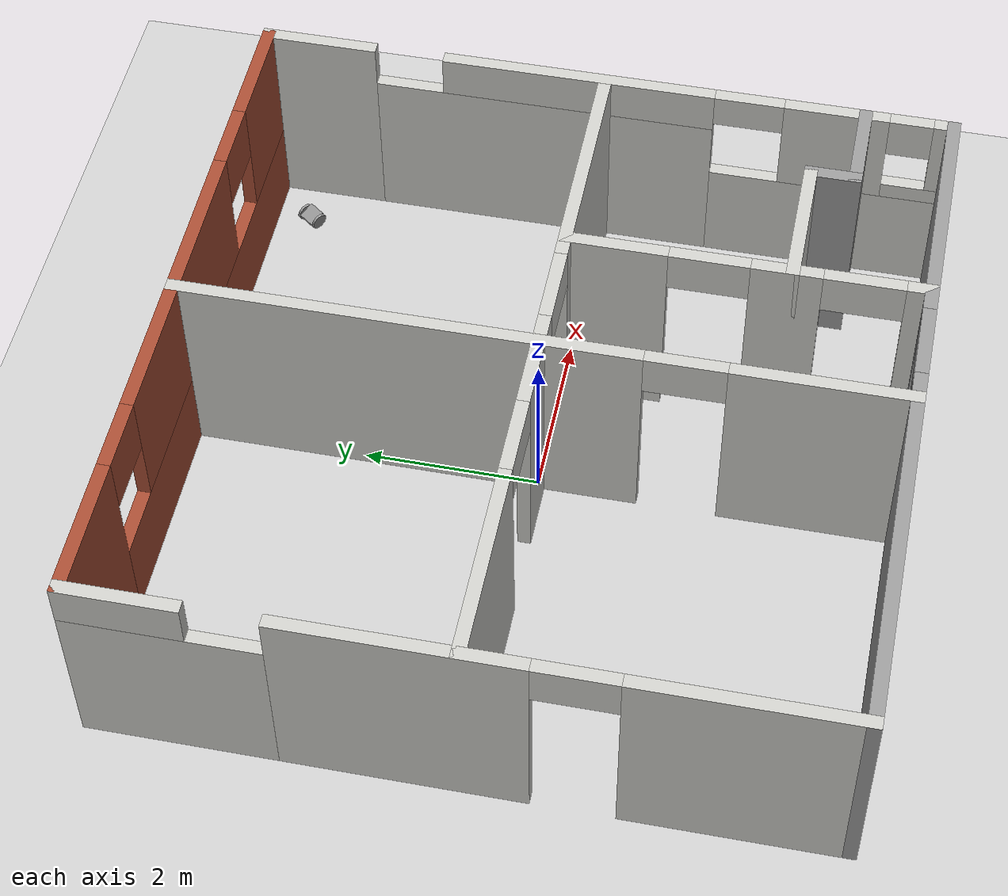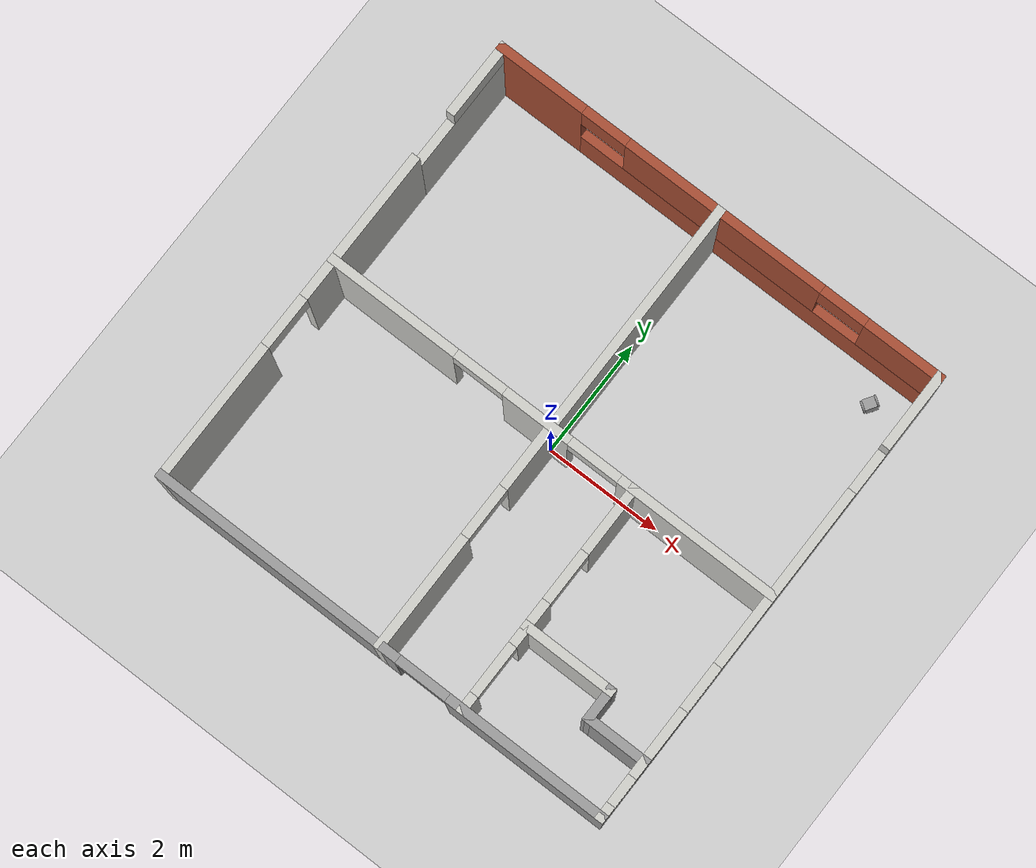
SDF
<sdf version="1.6">
 <world name="default">
  <model name="ground_plane">
   <static>1</static>
   <link name="link">
    <collision name="collision">
     <geometry><plane><normal>0 0 1</normal><size>100 100</size></plane></geometry>
     <surface><friction><ode><mu>100</mu><mu2>50</mu2></ode></friction></surface>
    </collision>
    <visual name="visual">
     <cast_shadows>0</cast_shadows>
     <geometry><plane><normal>0 0 1</normal><size>100 100</size></plane></geometry>
     <material>
      <script><uri>file://media/materials/scripts/gazebo.material</uri><name>Gazebo/Grey</name></script>
     </material>
    </visual>
   </link>
  </model>
  <model name="apartment_v2">
   <link name="Wall_0">
    <pose>-4 0 0 0 -0 1.5708</pose>
    <visual name="Wall_0_Visual_0">
     <pose>-2.83835 0 1.25 0 -0 0</pose>
     <geometry><box><size>2.47329 0.15 2.5</size></box></geometry>
     <material>
      <script><uri>file://media/materials/scripts/gazebo.material</uri><name>Gazebo/CeilingTiled</name></script>
      <ambient>1 1 1 1</ambient>
     </material>
     <meta><layer>0</layer></meta>
    </visual>
    <collision name="Wall_0_Collision_0">
     <geometry><box><size>2.47329 0.15 2.5</size></box></geometry>
     <pose>-2.83835 0 1.25 0 -0 0</pose>
    </collision>
    <visual name="Wall_0_Visual_1">
     <pose>0.623174 0 1.25 0 -0 0</pose>
     <geometry><box><size>2.64976 0.15 2.5</size></box></geometry>
     <material>
      <script><uri>file://media/materials/scripts/gazebo.material</uri><name>Gazebo/CeilingTiled</name></script>
      <ambient>1 1 1 1</ambient>
     </material>
     <meta><layer>0</layer></meta>
    </visual>
    <collision name="Wall_0_Collision_1">
     <geometry><box><size>2.64976 0.15 2.5</size></box></geometry>
     <pose>0.623174 0 1.25 0 -0 0</pose>
    </collision>
    <visual name="Wall_0_Visual_2">
     <pose>3.01153 0 1 0 -0 0</pose>
     <geometry><box><size>2.12695 0.15 2</size></box></geometry>
     <material>
      <script><uri>file://media/materials/scripts/gazebo.material</uri><name>Gazebo/CeilingTiled</name></script>
      <ambient>1 1 1 1</ambient>
     </material>
     <meta><layer>0</layer></meta>
    </visual>
    <collision name="Wall_0_Collision_2">
     <geometry><box><size>2.12695 0.15 2</size></box></geometry>
     <pose>3.01153 0 1 0 -0 0</pose>
    </collision>
    <visual name="Wall_0_Visual_3">
     <pose>-1.15171 0 2.25 0 -0 0</pose>
     <geometry><box><size>0.9 0.15 0.5</size></box></geometry>
     <material>
      <script><uri>file://media/materials/scripts/gazebo.material</uri><name>Gazebo/CeilingTiled</name></script>
      <ambient>1 1 1 1</ambient>
     </material>
     <meta><layer>0</layer></meta>
    </visual>
    <collision name="Wall_0_Collision_3">
     <geometry><box><size>0.9 0.15 0.5</size></box></geometry>
     <pose>-1.15171 0 2.25 0 -0 0</pose>
    </collision>
    <visual name="Wall_0_Visual_4">
     <pose>3.41153 0 2.25 0 -0 0</pose>
     <geometry><box><size>1.32695 0.15 0.5</size></box></geometry>
     <material>
      <script><uri>file://media/materials/scripts/gazebo.material</uri><name>Gazebo/CeilingTiled</name></script>
      <ambient>1 1 1 1</ambient>
     </material>
     <meta><layer>0</layer></meta>
    </visual>
    <collision name="Wall_0_Collision_4">
     <geometry><box><size>1.32695 0.15 0.5</size></box></geometry>
     <pose>3.41153 0 2.25 0 -0 0</pose>
    </collision>
   </link>
   <link name="Wall_1">
    <pose>0 4 0 0 -0 0</pose>
    <visual name="Wall_1_Visual_0">
     <pose>-3.27694 0 1.25 0 -0 0</pose>
     <geometry><box><size>1.59612 0.15 2.5</size></box></geometry>
     <material>
      <script><uri>file://media/materials/scripts/gazebo.material</uri><name>Gazebo/Bricks</name></script>
      <ambient>0.760784 0.662745 0.627451 1</ambient>
     </material>
     <meta><layer>0</layer></meta>
    </visual>
    <collision name="Wall_1_Collision_0">
     <geometry><box><size>1.59612 0.15 2.5</size></box></geometry>
     <pose>-3.27694 0 1.25 0 -0 0</pose>
    </collision>
    <visual name="Wall_1_Visual_1">
     <pose>0.79806 0 0.5 0 -0 0</pose>
     <geometry><box><size>6.55388 0.15 1</size></box></geometry>
     <material>
      <script><uri>file://media/materials/scripts/gazebo.material</uri><name>Gazebo/Bricks</name></script>
      <ambient>0.760784 0.662745 0.627451 1</ambient>
     </material>
     <meta><layer>0</layer></meta>
    </visual>
    <collision name="Wall_1_Collision_1">
     <geometry><box><size>6.55388 0.15 1</size></box></geometry>
     <pose>0.79806 0 0.5 0 -0 0</pose>
    </collision>
    <visual name="Wall_1_Visual_2">
     <pose>0.103442 0 1.75 0 -0 0</pose>
     <geometry><box><size>3.56465 0.15 1.5</size></box></geometry>
     <material>
      <script><uri>file://media/materials/scripts/gazebo.material</uri><name>Gazebo/Bricks</name></script>
      <ambient>0.760784 0.662745 0.627451 1</ambient>
     </material>
     <meta><layer>0</layer></meta>
    </visual>
    <collision name="Wall_1_Collision_2">
     <geometry><box><size>3.56465 0.15 1.5</size></box></geometry>
     <pose>0.103442 0 1.75 0 -0 0</pose>
    </collision>
    <visual name="Wall_1_Visual_3">
     <pose>3.38038 0 1.75 0 -0 0</pose>
     <geometry><box><size>1.38923 0.15 1.5</size></box></geometry>
     <material>
      <script><uri>file://media/materials/scripts/gazebo.material</uri><name>Gazebo/Bricks</name></script>
      <ambient>0.760784 0.662745 0.627451 1</ambient>
     </material>
     <meta><layer>0</layer></meta>
    </visual>
    <collision name="Wall_1_Collision_3">
     <geometry><box><size>1.38923 0.15 1.5</size></box></geometry>
     <pose>3.38038 0 1.75 0 -0 0</pose>
    </collision>
    <visual name="Wall_1_Visual_4">
     <pose>-2.07888 0 2.15 0 -0 0</pose>
     <geometry><box><size>0.8 0.15 0.7</size></box></geometry>
     <material>
      <script><uri>file://media/materials/scripts/gazebo.material</uri><name>Gazebo/Bricks</name></script>
      <ambient>0.760784 0.662745 0.627451 1</ambient>
     </material>
     <meta><layer>0</layer></meta>
    </visual>
    <collision name="Wall_1_Collision_4">
     <geometry><box><size>0.8 0.15 0.7</size></box></geometry>
     <pose>-2.07888 0 2.15 0 -0 0</pose>
    </collision>
    <visual name="Wall_1_Visual_5">
     <pose>2.28577 0 2.15 0 -0 0</pose>
     <geometry><box><size>0.8 0.15 0.7</size></box></geometry>
     <material>
      <script><uri>file://media/materials/scripts/gazebo.material</uri><name>Gazebo/Bricks</name></script>
      <ambient>0.760784 0.662745 0.627451 1</ambient>
     </material>
     <meta><layer>0</layer></meta>
    </visual>
    <collision name="Wall_1_Collision_5">
     <geometry><box><size>0.8 0.15 0.7</size></box></geometry>
     <pose>2.28577 0 2.15 0 -0 0</pose>
    </collision>
   </link>
   <link name="Wall_11">
    <collision name="Wall_11_Collision">
     <geometry><box><size>1.65 0.15 2.5</size></box></geometry>
     <pose>0 0 1.25 0 -0 0</pose>
    </collision>
    <visual name="Wall_11_Visual">
     <pose>0 0 1.25 0 -0 0</pose>
     <geometry><box><size>1.65 0.15 2.5</size></box></geometry>
     <material>
      <script><uri>file://media/materials/scripts/gazebo.material</uri><name>Gazebo/CeilingTiled</name></script>
      <ambient>1 1 1 1</ambient>
     </material>
     <meta><layer>0</layer></meta>
    </visual>
    <pose>2.25 -2.5 0 0 -0 0</pose>
   </link>
   <link name="Wall_12">
    <collision name="Wall_12_Collision">
     <geometry><box><size>0.65 0.15 2.5</size></box></geometry>
     <pose>0 0 1.25 0 -0 0</pose>
    </collision>
    <visual name="Wall_12_Visual">
     <pose>0 0 1.25 0 -0 0</pose>
     <geometry><box><size>0.65 0.15 2.5</size></box></geometry>
     <material>
      <script><uri>file://media/materials/scripts/gazebo.material</uri><name>Gazebo/Grey</name></script>
      <ambient>1 1 1 1</ambient>
     </material>
     <meta><layer>0</layer></meta>
    </visual>
    <pose>3 -2.75 0 0 0 -1.5708</pose>
   </link>
   <link name="Wall_13">
    <collision name="Wall_13_Collision">
     <geometry><box><size>1.15 0.15 2.5</size></box></geometry>
     <pose>0 0 1.25 0 -0 0</pose>
    </collision>
    <visual name="Wall_13_Visual">
     <pose>0 0 1.25 0 -0 0</pose>
     <geometry><box><size>1.15 0.15 2.5</size></box></geometry>
     <material>
      <script><uri>file://media/materials/scripts/gazebo.material</uri><name>Gazebo/Grey</name></script>
      <ambient>1 1 1 1</ambient>
     </material>
     <meta><layer>0</layer></meta>
    </visual>
    <pose>3.5 -3 0 0 -0 0</pose>
   </link>
   <link name="Wall_2">
    <pose>4 0 0 0 0 -1.5708</pose>
    <visual name="Wall_2_Visual_0">
     <pose>-3.39141 0 1.25 0 -0 0</pose>
     <geometry><box><size>1.36717 0.15 2.5</size></box></geometry>
     <material>
      <script><uri>file://media/materials/scripts/gazebo.material</uri><name>Gazebo/CeilingTiled</name></script>
      <ambient>1 0.764706 0.305882 1</ambient>
     </material>
     <meta><layer>0</layer></meta>
    </visual>
    <collision name="Wall_2_Collision_0">
     <geometry><box><size>1.36717 0.15 2.5</size></box></geometry>
     <pose>-3.39141 0 1.25 0 -0 0</pose>
    </collision>
    <visual name="Wall_2_Visual_1">
     <pose>-0.716584 0 1 0 -0 0</pose>
     <geometry><box><size>3.98249 0.15 2</size></box></geometry>
     <material>
      <script><uri>file://media/materials/scripts/gazebo.material</uri><name>Gazebo/CeilingTiled</name></script>
      <ambient>1 0.764706 0.305882 1</ambient>
     </material>
     <meta><layer>0</layer></meta>
    </visual>
    <collision name="Wall_2_Collision_1">
     <geometry><box><size>3.98249 0.15 2</size></box></geometry>
     <pose>-0.716584 0 1 0 -0 0</pose>
    </collision>
    <visual name="Wall_2_Visual_2">
     <pose>2.67483 0 0.65 0 -0 0</pose>
     <geometry><box><size>2.80034 0.15 1.3</size></box></geometry>
     <material>
      <script><uri>file://media/materials/scripts/gazebo.material</uri><name>Gazebo/CeilingTiled</name></script>
      <ambient>1 0.764706 0.305882 1</ambient>
     </material>
     <meta><layer>0</layer></meta>
    </visual>
    <collision name="Wall_2_Collision_2">
     <geometry><box><size>2.80034 0.15 1.3</size></box></geometry>
     <pose>2.67483 0 0.65 0 -0 0</pose>
    </collision>
    <visual name="Wall_2_Visual_3">
     <pose>2.67671 0 1.9 0 -0 0</pose>
     <geometry><box><size>1.20409 0.15 1.2</size></box></geometry>
     <material>
      <script><uri>file://media/materials/scripts/gazebo.material</uri><name>Gazebo/CeilingTiled</name></script>
      <ambient>1 0.764706 0.305882 1</ambient>
     </material>
     <meta><layer>0</layer></meta>
    </visual>
    <collision name="Wall_2_Collision_3">
     <geometry><box><size>1.20409 0.15 1.2</size></box></geometry>
     <pose>2.67671 0 1.9 0 -0 0</pose>
    </collision>
    <visual name="Wall_2_Visual_4">
     <pose>3.67687 0 1.4 0 -0 0</pose>
     <geometry><box><size>0.796249 0.15 0.2</size></box></geometry>
     <material>
      <script><uri>file://media/materials/scripts/gazebo.material</uri><name>Gazebo/CeilingTiled</name></script>
      <ambient>1 0.764706 0.305882 1</ambient>
     </material>
     <meta><layer>0</layer></meta>
    </visual>
    <collision name="Wall_2_Collision_4">
     <geometry><box><size>0.796249 0.15 0.2</size></box></geometry>
     <pose>3.67687 0 1.4 0 -0 0</pose>
    </collision>
    <visual name="Wall_2_Visual_5">
     <pose>3.92687 0 2 0 -0 0</pose>
     <geometry><box><size>0.296249 0.15 1</size></box></geometry>
     <material>
      <script><uri>file://media/materials/scripts/gazebo.material</uri><name>Gazebo/CeilingTiled</name></script>
      <ambient>1 0.764706 0.305882 1</ambient>
     </material>
     <meta><layer>0</layer></meta>
    </visual>
    <collision name="Wall_2_Collision_5">
     <geometry><box><size>0.296249 0.15 1</size></box></geometry>
     <pose>3.92687 0 2 0 -0 0</pose>
    </collision>
    <visual name="Wall_2_Visual_6">
     <pose>3.52875 0 2.25 0 -0 0</pose>
     <geometry><box><size>0.5 0.15 0.5</size></box></geometry>
     <material>
      <script><uri>file://media/materials/scripts/gazebo.material</uri><name>Gazebo/CeilingTiled</name></script>
      <ambient>1 0.764706 0.305882 1</ambient>
     </material>
     <meta><layer>0</layer></meta>
    </visual>
    <collision name="Wall_2_Collision_6">
     <geometry><box><size>0.5 0.15 0.5</size></box></geometry>
     <pose>3.52875 0 2.25 0 -0 0</pose>
    </collision>
    <visual name="Wall_2_Visual_7">
     <pose>-0.316584 0 2.25 0 -0 0</pose>
     <geometry><box><size>3.18249 0.15 0.5</size></box></geometry>
     <material>
      <script><uri>file://media/materials/scripts/gazebo.material</uri><name>Gazebo/CeilingTiled</name></script>
      <ambient>1 0.764706 0.305882 1</ambient>
     </material>
     <meta><layer>0</layer></meta>
    </visual>
    <collision name="Wall_2_Collision_7">
     <geometry><box><size>3.18249 0.15 0.5</size></box></geometry>
     <pose>-0.316584 0 2.25 0 -0 0</pose>
    </collision>
    <visual name="Wall_2_Visual_8">
     <pose>1.67466 0 2.3 0 -0 0</pose>
     <geometry><box><size>0.8 0.15 0.4</size></box></geometry>
     <material>
      <script><uri>file://media/materials/scripts/gazebo.material</uri><name>Gazebo/CeilingTiled</name></script>
      <ambient>1 0.764706 0.305882 1</ambient>
     </material>
     <meta><layer>0</layer></meta>
    </visual>
    <collision name="Wall_2_Collision_8">
     <geometry><box><size>0.8 0.15 0.4</size></box></geometry>
     <pose>1.67466 0 2.3 0 -0 0</pose>
    </collision>
   </link>
   <link name="Wall_3">
    <pose>0 -4 0 0 -0 3.14159</pose>
    <visual name="Wall_3_Visual_0">
     <pose>-2.65112 0 1.25 0 -0 0</pose>
     <geometry><box><size>2.84775 0.15 2.5</size></box></geometry>
     <material>
      <script><uri>file://media/materials/scripts/gazebo.material</uri><name>Gazebo/Grey</name></script>
      <ambient>1 1 1 1</ambient>
     </material>
     <meta><layer>0</layer></meta>
    </visual>
    <collision name="Wall_3_Collision_0">
     <geometry><box><size>2.84775 0.15 2.5</size></box></geometry>
     <pose>-2.65112 0 1.25 0 -0 0</pose>
    </collision>
    <visual name="Wall_3_Visual_1">
     <pose>1.87388 0 1.25 0 -0 0</pose>
     <geometry><box><size>4.40225 0.15 2.5</size></box></geometry>
     <material>
      <script><uri>file://media/materials/scripts/gazebo.material</uri><name>Gazebo/Grey</name></script>
      <ambient>1 1 1 1</ambient>
     </material>
     <meta><layer>0</layer></meta>
    </visual>
    <collision name="Wall_3_Collision_1">
     <geometry><box><size>4.40225 0.15 2.5</size></box></geometry>
     <pose>1.87388 0 1.25 0 -0 0</pose>
    </collision>
    <visual name="Wall_3_Visual_2">
     <pose>-0.777247 0 2.25 0 -0 0</pose>
     <geometry><box><size>0.9 0.15 0.5</size></box></geometry>
     <material>
      <script><uri>file://media/materials/scripts/gazebo.material</uri><name>Gazebo/Grey</name></script>
      <ambient>1 1 1 1</ambient>
     </material>
     <meta><layer>0</layer></meta>
    </visual>
    <collision name="Wall_3_Collision_2">
     <geometry><box><size>0.9 0.15 0.5</size></box></geometry>
     <pose>-0.777247 0 2.25 0 -0 0</pose>
    </collision>
   </link>
   <link name="Wall_5">
    <pose>0 0 0 0 0 -1.5708</pose>
    <visual name="Wall_5_Visual_0">
     <pose>-1.47545 0 1.25 0 -0 0</pose>
     <geometry><box><size>5.19909 0.15 2.5</size></box></geometry>
     <material>
      <script><uri>file://media/materials/scripts/gazebo.material</uri><name>Gazebo/CeilingTiled</name></script>
      <ambient>1 1 1 1</ambient>
     </material>
     <meta><layer>0</layer></meta>
    </visual>
    <collision name="Wall_5_Collision_0">
     <geometry><box><size>5.19909 0.15 2.5</size></box></geometry>
     <pose>-1.47545 0 1.25 0 -0 0</pose>
    </collision>
    <visual name="Wall_5_Visual_1">
     <pose>3.04955 0 1.25 0 -0 0</pose>
     <geometry><box><size>2.05091 0.15 2.5</size></box></geometry>
     <material>
      <script><uri>file://media/materials/scripts/gazebo.material</uri><name>Gazebo/CeilingTiled</name></script>
      <ambient>1 1 1 1</ambient>
     </material>
     <meta><layer>0</layer></meta>
    </visual>
    <collision name="Wall_5_Collision_1">
     <geometry><box><size>2.05091 0.15 2.5</size></box></geometry>
     <pose>3.04955 0 1.25 0 -0 0</pose>
    </collision>
    <visual name="Wall_5_Visual_2">
     <pose>1.57409 0 2.25 0 -0 0</pose>
     <geometry><box><size>0.9 0.15 0.5</size></box></geometry>
     <material>
      <script><uri>file://media/materials/scripts/gazebo.material</uri><name>Gazebo/CeilingTiled</name></script>
      <ambient>1 1 1 1</ambient>
     </material>
     <meta><layer>0</layer></meta>
    </visual>
    <collision name="Wall_5_Collision_2">
     <geometry><box><size>0.9 0.15 0.5</size></box></geometry>
     <pose>1.57409 0 2.25 0 -0 0</pose>
    </collision>
   </link>
   <link name="Wall_7">
    <visual name="Wall_7_Visual_0">
     <pose>-2.90972 0 1.25 0 -0 0</pose>
     <geometry><box><size>2.33055 0.15 2.5</size></box></geometry>
     <material>
      <script><uri>file://media/materials/scripts/gazebo.material</uri><name>Gazebo/CeilingTiled</name></script>
      <ambient>1 1 1 1</ambient>
     </material>
     <meta><layer>0</layer></meta>
    </visual>
    <collision name="Wall_7_Collision_0">
     <geometry><box><size>2.33055 0.15 2.5</size></box></geometry>
     <pose>-2.90972 0 1.25 0 -0 0</pose>
    </collision>
    <visual name="Wall_7_Visual_1">
     <pose>-0.248545 0 1.25 0 -0 0</pose>
     <geometry><box><size>1.19181 0.15 2.5</size></box></geometry>
     <material>
      <script><uri>file://media/materials/scripts/gazebo.material</uri><name>Gazebo/CeilingTiled</name></script>
      <ambient>1 1 1 1</ambient>
     </material>
     <meta><layer>0</layer></meta>
    </visual>
    <collision name="Wall_7_Collision_1">
     <geometry><box><size>1.19181 0.15 2.5</size></box></geometry>
     <pose>-0.248545 0 1.25 0 -0 0</pose>
    </collision>
    <visual name="Wall_7_Visual_2">
     <pose>2.66118 0 1.25 0 -0 0</pose>
     <geometry><box><size>2.82764 0.15 2.5</size></box></geometry>
     <material>
      <script><uri>file://media/materials/scripts/gazebo.material</uri><name>Gazebo/CeilingTiled</name></script>
      <ambient>1 1 1 1</ambient>
     </material>
     <meta><layer>0</layer></meta>
    </visual>
    <collision name="Wall_7_Collision_2">
     <geometry><box><size>2.82764 0.15 2.5</size></box></geometry>
     <pose>2.66118 0 1.25 0 -0 0</pose>
    </collision>
    <visual name="Wall_7_Visual_3">
     <pose>-1.29445 0 2.25 0 -0 0</pose>
     <geometry><box><size>0.9 0.15 0.5</size></box></geometry>
     <material>
      <script><uri>file://media/materials/scripts/gazebo.material</uri><name>Gazebo/CeilingTiled</name></script>
      <ambient>1 1 1 1</ambient>
     </material>
     <meta><layer>0</layer></meta>
    </visual>
    <collision name="Wall_7_Collision_3">
     <geometry><box><size>0.9 0.15 0.5</size></box></geometry>
     <pose>-1.29445 0 2.25 0 -0 0</pose>
    </collision>
    <visual name="Wall_7_Visual_4">
     <pose>0.797361 0 2.25 0 -0 0</pose>
     <geometry><box><size>0.9 0.15 0.5</size></box></geometry>
     <material>
      <script><uri>file://media/materials/scripts/gazebo.material</uri><name>Gazebo/CeilingTiled</name></script>
      <ambient>1 1 1 1</ambient>
     </material>
     <meta><layer>0</layer></meta>
    </visual>
    <collision name="Wall_7_Collision_4">
     <geometry><box><size>0.9 0.15 0.5</size></box></geometry>
     <pose>0.797361 0 2.25 0 -0 0</pose>
    </collision>
   </link>
   <link name="Wall_9">
    <pose>1.5 -2 0 0 0 -1.5708</pose>
    <visual name="Wall_9_Visual_0">
     <pose>-1.4654 0 1.25 0 -0 0</pose>
     <geometry><box><size>1.21921 0.15 2.5</size></box></geometry>
     <material>
      <script><uri>file://media/materials/scripts/gazebo.material</uri><name>Gazebo/CeilingTiled</name></script>
      <ambient>1 1 1 1</ambient>
     </material>
     <meta><layer>0</layer></meta>
    </visual>
    <collision name="Wall_9_Collision_0">
     <geometry><box><size>1.21921 0.15 2.5</size></box></geometry>
     <pose>-1.4654 0 1.25 0 -0 0</pose>
    </collision>
    <visual name="Wall_9_Visual_1">
     <pose>0.438976 0 1.25 0 -0 0</pose>
     <geometry><box><size>0.78954 0.15 2.5</size></box></geometry>
     <material>
      <script><uri>file://media/materials/scripts/gazebo.material</uri><name>Gazebo/CeilingTiled</name></script>
      <ambient>1 1 1 1</ambient>
     </material>
     <meta><layer>0</layer></meta>
    </visual>
    <collision name="Wall_9_Collision_1">
     <geometry><box><size>0.78954 0.15 2.5</size></box></geometry>
     <pose>0.438976 0 1.25 0 -0 0</pose>
    </collision>
    <visual name="Wall_9_Visual_2">
     <pose>1.90437 0 1.25 0 -0 0</pose>
     <geometry><box><size>0.341254 0.15 2.5</size></box></geometry>
     <material>
      <script><uri>file://media/materials/scripts/gazebo.material</uri><name>Gazebo/CeilingTiled</name></script>
      <ambient>1 1 1 1</ambient>
     </material>
     <meta><layer>0</layer></meta>
    </visual>
    <collision name="Wall_9_Collision_2">
     <geometry><box><size>0.341254 0.15 2.5</size></box></geometry>
     <pose>1.90437 0 1.25 0 -0 0</pose>
    </collision>
    <visual name="Wall_9_Visual_3">
     <pose>-0.405794 0 2.25 0 -0 0</pose>
     <geometry><box><size>0.9 0.15 0.5</size></box></geometry>
     <material>
      <script><uri>file://media/materials/scripts/gazebo.material</uri><name>Gazebo/CeilingTiled</name></script>
      <ambient>1 1 1 1</ambient>
     </material>
     <meta><layer>0</layer></meta>
    </visual>
    <collision name="Wall_9_Collision_3">
     <geometry><box><size>0.9 0.15 0.5</size></box></geometry>
     <pose>-0.405794 0 2.25 0 -0 0</pose>
    </collision>
    <visual name="Wall_9_Visual_4">
     <pose>1.28375 0 2.25 0 -0 0</pose>
     <geometry><box><size>0.9 0.15 0.5</size></box></geometry>
     <material>
      <script><uri>file://media/materials/scripts/gazebo.material</uri><name>Gazebo/CeilingTiled</name></script>
      <ambient>1 1 1 1</ambient>
     </material>
     <meta><layer>0</layer></meta>
    </visual>
    <collision name="Wall_9_Collision_4">
     <geometry><box><size>0.9 0.15 0.5</size></box></geometry>
     <pose>1.28375 0 2.25 0 -0 0</pose>
    </collision>
   </link>
   <static>1</static>
  </model>
  <model name="project1_model">
   <link name="link_0">
    <pose>-0 0 0.2 0 -0 0</pose>
    <inertial>
     <mass>1</mass>
     <inertia>
      <ixx>0.166667</ixx>
      <ixy>0</ixy>
      <ixz>0</ixz>
      <iyy>0.166667</iyy>
      <iyz>0</iyz>
      <izz>0.166667</izz>
     </inertia>
    </inertial>
    <visual name="visual">
     <geometry><box><size>0.2 0.2 0.1</size></box></geometry>
     <material>
      <lighting>1</lighting>
      <script><uri>file://media/materials/scripts/gazebo.material</uri><name>Gazebo/Grey</name></script>
      <shader type="pixel"><normal_map>__default__</normal_map></shader>
      <ambient>0.3 0.3 0.3 1</ambient>
      <diffuse>0.7 0.7 0.7 1</diffuse>
      <specular>0.01 0.01 0.01 1</specular>
      <emissive>0 0 0 1</emissive>
     </material>
    </visual>
    <collision name="collision">
     <geometry><box><size>0.2 0.2 0.1</size></box></geometry>
     <surface>
      <friction>
       <ode><mu>1</mu><mu2>1</mu2><fdir1>0 0 0</fdir1><slip1>0</slip1><slip2>0</slip2></ode>
       <torsional>
        <coefficient>1</coefficient>
        <patch_radius>0</patch_radius>
        <surface_radius>0</surface_radius>
        <use_patch_radius>1</use_patch_radius>
        <ode><slip>0</slip></ode>
       </torsional>
      </friction>
      <bounce><restitution_coefficient>0</restitution_coefficient><threshold>1e+06</threshold></bounce>
      <contact>
       <collide_without_contact>0</collide_without_contact>
       <collide_without_contact_bitmask>1</collide_without_contact_bitmask>
       <collide_bitmask>1</collide_bitmask>
       <ode>
        <soft_cfm>0</soft_cfm>
        <soft_erp>0.2</soft_erp>
        <kp>1e+13</kp>
        <kd>1</kd>
        <max_vel>0.01</max_vel>
        <min_depth>0</min_depth>
       </ode>
       <bullet>
        <split_impulse>1</split_impulse>
        <split_impulse_penetration_threshold>-0.01</split_impulse_penetration_threshold>
        <soft_cfm>0</soft_cfm>
        <soft_erp>0.2</soft_erp>
        <kp>1e+13</kp>
        <kd>1</kd>
       </bullet>
      </contact>
     </surface>
    </collision>
   </link>
   <link name="link_1">
    <pose>-0 -0.115013 0.2 1.5707 -0 0</pose>
    <inertial>
     <mass>1</mass>
     <inertia><ixx>0.145833</ixx><ixy>0</ixy><ixz>0</ixz><iyy>0.145833</iyy><iyz>0</iyz><izz>0.125</izz></inertia>
    </inertial>
    <visual name="visual">
     <geometry><cylinder><radius>0.1</radius><length>0.03</length></cylinder></geometry>
     <material>
      <lighting>1</lighting>
      <script><uri>file://media/materials/scripts/gazebo.material</uri><name>Gazebo/Grey</name></script>
      <shader type="pixel"><normal_map>__default__</normal_map></shader>
      <ambient>0.3 0.3 0.3 1</ambient>
      <diffuse>0.7 0.7 0.7 1</diffuse>
      <specular>0.01 0.01 0.01 1</specular>
      <emissive>0 0 0 1</emissive>
     </material>
    </visual>
    <collision name="collision">
     <geometry><cylinder><radius>0.1</radius><length>0.03</length></cylinder></geometry>
     <surface>
      <friction>
       <ode><mu>1</mu><mu2>1</mu2><fdir1>0 0 0</fdir1><slip1>0</slip1><slip2>0</slip2></ode>
       <torsional>
        <coefficient>1</coefficient>
        <patch_radius>0</patch_radius>
        <surface_radius>0</surface_radius>
        <use_patch_radius>1</use_patch_radius>
        <ode><slip>0</slip></ode>
       </torsional>
      </friction>
      <bounce><restitution_coefficient>0</restitution_coefficient><threshold>1e+06</threshold></bounce>
      <contact>
       <collide_without_contact>0</collide_without_contact>
       <collide_without_contact_bitmask>1</collide_without_contact_bitmask>
       <collide_bitmask>1</collide_bitmask>
       <ode>
        <soft_cfm>0</soft_cfm>
        <soft_erp>0.2</soft_erp>
        <kp>1e+13</kp>
        <kd>1</kd>
        <max_vel>0.01</max_vel>
        <min_depth>0</min_depth>
       </ode>
       <bullet>
        <split_impulse>1</split_impulse>
        <split_impulse_penetration_threshold>-0.01</split_impulse_penetration_threshold>
        <soft_cfm>0</soft_cfm>
        <soft_erp>0.2</soft_erp>
        <kp>1e+13</kp>
        <kd>1</kd>
       </bullet>
      </contact>
     </surface>
    </collision>
   </link>
   <link name="link_1_clone">
    <pose>0.02 0.115 0.2 1.5707 -0 0</pose>
    <inertial>
     <mass>1</mass>
     <inertia><ixx>0.145833</ixx><ixy>0</ixy><ixz>0</ixz><iyy>0.145833</iyy><iyz>0</iyz><izz>0.125</izz></inertia>
    </inertial>
    <visual name="visual">
     <geometry><cylinder><radius>0.1</radius><length>0.03</length></cylinder></geometry>
     <material>
      <lighting>1</lighting>
      <script><uri>file://media/materials/scripts/gazebo.material</uri><name>Gazebo/Grey</name></script>
      <shader type="pixel"><normal_map>__default__</normal_map></shader>
      <ambient>0.3 0.3 0.3 1</ambient>
      <diffuse>0.7 0.7 0.7 1</diffuse>
      <specular>0.01 0.01 0.01 1</specular>
      <emissive>0 0 0 1</emissive>
     </material>
    </visual>
    <collision name="collision">
     <geometry><cylinder><radius>0.1</radius><length>0.03</length></cylinder></geometry>
     <surface>
      <friction>
       <ode><mu>1</mu><mu2>1</mu2><fdir1>0 0 0</fdir1><slip1>0</slip1><slip2>0</slip2></ode>
       <torsional>
        <coefficient>1</coefficient>
        <patch_radius>0</patch_radius>
        <surface_radius>0</surface_radius>
        <use_patch_radius>1</use_patch_radius>
        <ode><slip>0</slip></ode>
       </torsional>
      </friction>
      <bounce><restitution_coefficient>0</restitution_coefficient><threshold>1e+06</threshold></bounce>
      <contact>
       <collide_without_contact>0</collide_without_contact>
       <collide_without_contact_bitmask>1</collide_without_contact_bitmask>
       <collide_bitmask>1</collide_bitmask>
       <ode>
        <soft_cfm>0</soft_cfm>
        <soft_erp>0.2</soft_erp>
        <kp>1e+13</kp>
        <kd>1</kd>
        <max_vel>0.01</max_vel>
        <min_depth>0</min_depth>
       </ode>
       <bullet>
        <split_impulse>1</split_impulse>
        <split_impulse_penetration_threshold>-0.01</split_impulse_penetration_threshold>
        <soft_cfm>0</soft_cfm>
        <soft_erp>0.2</soft_erp>
        <kp>1e+13</kp>
        <kd>1</kd>
       </bullet>
      </contact>
     </surface>
    </collision>
   </link>
   <link name="link_2">
    <pose>-0 0 0.275 0 -0 0</pose>
    <inertial>
     <mass>1</mass>
     <inertia><ixx>0.145833</ixx><ixy>0</ixy><ixz>0</ixz><iyy>0.145833</iyy><iyz>0</iyz><izz>0.125</izz></inertia>
    </inertial>
    <visual name="visual">
     <geometry><cylinder><radius>0.075</radius><length>0.05</length></cylinder></geometry>
     <material>
      <lighting>1</lighting>
      <script><uri>file://media/materials/scripts/gazebo.material</uri><name>Gazebo/Grey</name></script>
      <shader type="pixel"><normal_map>__default__</normal_map></shader>
      <ambient>0.3 0.3 0.3 1</ambient>
      <diffuse>0.7 0.7 0.7 1</diffuse>
      <specular>0.01 0.01 0.01 1</specular>
      <emissive>0 0 0 1</emissive>
     </material>
    </visual>
    <collision name="collision">
     <geometry><cylinder><radius>0.075</radius><length>0.05</length></cylinder></geometry>
     <surface>
      <friction>
       <ode><mu>1</mu><mu2>1</mu2><fdir1>0 0 0</fdir1><slip1>0</slip1><slip2>0</slip2></ode>
       <torsional>
        <coefficient>1</coefficient>
        <patch_radius>0</patch_radius>
        <surface_radius>0</surface_radius>
        <use_patch_radius>1</use_patch_radius>
        <ode><slip>0</slip></ode>
       </torsional>
      </friction>
      <bounce><restitution_coefficient>0</restitution_coefficient><threshold>1e+06</threshold></bounce>
      <contact>
       <collide_without_contact>0</collide_without_contact>
       <collide_without_contact_bitmask>1</collide_without_contact_bitmask>
       <collide_bitmask>1</collide_bitmask>
       <ode>
        <soft_cfm>0</soft_cfm>
        <soft_erp>0.2</soft_erp>
        <kp>1e+13</kp>
        <kd>1</kd>
        <max_vel>0.01</max_vel>
        <min_depth>0</min_depth>
       </ode>
       <bullet>
        <split_impulse>1</split_impulse>
        <split_impulse_penetration_threshold>-0.01</split_impulse_penetration_threshold>
        <soft_cfm>0</soft_cfm>
        <soft_erp>0.2</soft_erp>
        <kp>1e+13</kp>
        <kd>1</kd>
       </bullet>
      </contact>
     </surface>
    </collision>
   </link>
   <link name="link_2_clone">
    <pose>-0 0 0.45 0 -0 0</pose>
    <inertial>
     <mass>1</mass>
     <inertia><ixx>0.145833</ixx><ixy>0</ixy><ixz>0</ixz><iyy>0.145833</iyy><iyz>0</iyz><izz>0.125</izz></inertia>
    </inertial>
    <visual name="visual">
     <geometry><cylinder><radius>0.03</radius><length>0.3</length></cylinder></geometry>
     <material>
      <lighting>1</lighting>
      <script><uri>file://media/materials/scripts/gazebo.material</uri><name>Gazebo/Grey</name></script>
      <shader type="pixel"><normal_map>__default__</normal_map></shader>
      <ambient>0.3 0.3 0.3 1</ambient>
      <diffuse>0.7 0.7 0.7 1</diffuse>
      <specular>0.01 0.01 0.01 1</specular>
      <emissive>0 0 0 1</emissive>
     </material>
    </visual>
    <collision name="collision">
     <geometry><cylinder><radius>0.03</radius><length>0.3</length></cylinder></geometry>
     <surface>
      <friction>
       <ode><mu>1</mu><mu2>1</mu2><fdir1>0 0 0</fdir1><slip1>0</slip1><slip2>0</slip2></ode>
       <torsional>
        <coefficient>1</coefficient>
        <patch_radius>0</patch_radius>
        <surface_radius>0</surface_radius>
        <use_patch_radius>1</use_patch_radius>
        <ode><slip>0</slip></ode>
       </torsional>
      </friction>
      <bounce><restitution_coefficient>0</restitution_coefficient><threshold>1e+06</threshold></bounce>
      <contact>
       <collide_without_contact>0</collide_without_contact>
       <collide_without_contact_bitmask>1</collide_without_contact_bitmask>
       <collide_bitmask>1</collide_bitmask>
       <ode>
        <soft_cfm>0</soft_cfm>
        <soft_erp>0.2</soft_erp>
        <kp>1e+13</kp>
        <kd>1</kd>
        <max_vel>0.01</max_vel>
        <min_depth>0</min_depth>
       </ode>
       <bullet>
        <split_impulse>1</split_impulse>
        <split_impulse_penetration_threshold>-0.01</split_impulse_penetration_threshold>
        <soft_cfm>0</soft_cfm>
        <soft_erp>0.2</soft_erp>
        <kp>1e+13</kp>
        <kd>1</kd>
       </bullet>
      </contact>
     </surface>
    </collision>
   </link>
   <link name="link_2_clone_clone">
    <pose>-0 0 0.625 0 -0 0</pose>
    <inertial>
     <mass>1</mass>
     <inertia><ixx>0.145833</ixx><ixy>0</ixy><ixz>0</ixz><iyy>0.145833</iyy><iyz>0</iyz><izz>0.125</izz></inertia>
    </inertial>
    <visual name="visual">
     <geometry><cylinder><radius>0.03</radius><length>0.05</length></cylinder></geometry>
     <material>
      <lighting>1</lighting>
      <script><uri>file://media/materials/scripts/gazebo.material</uri><name>Gazebo/Grey</name></script>
      <shader type="pixel"><normal_map>__default__</normal_map></shader>
      <ambient>0.3 0.3 0.3 1</ambient>
      <diffuse>0.7 0.7 0.7 1</diffuse>
      <specular>0.01 0.01 0.01 1</specular>
      <emissive>0 0 0 1</emissive>
     </material>
    </visual>
    <collision name="collision">
     <geometry><cylinder><radius>0.03</radius><length>0.05</length></cylinder></geometry>
     <surface>
      <friction>
       <ode><mu>1</mu><mu2>1</mu2><fdir1>0 0 0</fdir1><slip1>0</slip1><slip2>0</slip2></ode>
       <torsional>
        <coefficient>1</coefficient>
        <patch_radius>0</patch_radius>
        <surface_radius>0</surface_radius>
        <use_patch_radius>1</use_patch_radius>
        <ode><slip>0</slip></ode>
       </torsional>
      </friction>
      <bounce><restitution_coefficient>0</restitution_coefficient><threshold>1e+06</threshold></bounce>
      <contact>
       <collide_without_contact>0</collide_without_contact>
       <collide_without_contact_bitmask>1</collide_without_contact_bitmask>
       <collide_bitmask>1</collide_bitmask>
       <ode>
        <soft_cfm>0</soft_cfm>
        <soft_erp>0.2</soft_erp>
        <kp>1e+13</kp>
        <kd>1</kd>
        <max_vel>0.01</max_vel>
        <min_depth>0</min_depth>
       </ode>
       <bullet>
        <split_impulse>1</split_impulse>
        <split_impulse_penetration_threshold>-0.01</split_impulse_penetration_threshold>
        <soft_cfm>0</soft_cfm>
        <soft_erp>0.2</soft_erp>
        <kp>1e+13</kp>
        <kd>1</kd>
       </bullet>
      </contact>
     </surface>
    </collision>
   </link>
   <link name="link_2_clone_clone_0">
    <pose>-0 0 0.7 0 -0 0</pose>
    <inertial>
     <mass>1</mass>
     <inertia><ixx>0.145833</ixx><ixy>0</ixy><ixz>0</ixz><iyy>0.145833</iyy><iyz>0</iyz><izz>0.125</izz></inertia>
    </inertial>
    <visual name="visual">
     <geometry><cylinder><radius>0.03</radius><length>0.1</length></cylinder></geometry>
     <material>
      <lighting>1</lighting>
      <script><uri>file://media/materials/scripts/gazebo.material</uri><name>Gazebo/Grey</name></script>
      <shader type="pixel"><normal_map>__default__</normal_map></shader>
      <ambient>0.3 0.3 0.3 1</ambient>
      <diffuse>0.7 0.7 0.7 1</diffuse>
      <specular>0.01 0.01 0.01 1</specular>
      <emissive>0 0 0 1</emissive>
     </material>
    </visual>
    <collision name="collision">
     <geometry><cylinder><radius>0.03</radius><length>0.1</length></cylinder></geometry>
     <surface>
      <friction>
       <ode><mu>1</mu><mu2>1</mu2><fdir1>0 0 0</fdir1><slip1>0</slip1><slip2>0</slip2></ode>
       <torsional>
        <coefficient>1</coefficient>
        <patch_radius>0</patch_radius>
        <surface_radius>0</surface_radius>
        <use_patch_radius>1</use_patch_radius>
        <ode><slip>0</slip></ode>
       </torsional>
      </friction>
      <bounce><restitution_coefficient>0</restitution_coefficient><threshold>1e+06</threshold></bounce>
      <contact>
       <collide_without_contact>0</collide_without_contact>
       <collide_without_contact_bitmask>1</collide_without_contact_bitmask>
       <collide_bitmask>1</collide_bitmask>
       <ode>
        <soft_cfm>0</soft_cfm>
        <soft_erp>0.2</soft_erp>
        <kp>1e+13</kp>
        <kd>1</kd>
        <max_vel>0.01</max_vel>
        <min_depth>0</min_depth>
       </ode>
       <bullet>
        <split_impulse>1</split_impulse>
        <split_impulse_penetration_threshold>-0.01</split_impulse_penetration_threshold>
        <soft_cfm>0</soft_cfm>
        <soft_erp>0.2</soft_erp>
        <kp>1e+13</kp>
        <kd>1</kd>
       </bullet>
      </contact>
     </surface>
    </collision>
   </link>
   <joint name="link_0_JOINT_0" type="revolute">
    <parent>link_0</parent>
    <child>link_1</child>
    <axis>
     <xyz>0 0 1</xyz>
     <use_parent_model_frame>0</use_parent_model_frame>
     <limit>
      <lower>-1.79769e+308</lower>
      <upper>1.79769e+308</upper>
      <effort>-1</effort>
      <velocity>-1</velocity>
     </limit>
     <dynamics>
      <spring_reference>0</spring_reference>
      <spring_stiffness>0</spring_stiffness>
      <damping>0</damping>
     </dynamics>
    </axis>
    <physics>
     <ode><limit><cfm>0</cfm><erp>0.2</erp></limit><suspension><cfm>0</cfm><erp>0.2</erp></suspension></ode>
    </physics>
   </joint>
   <joint name="link_0_JOINT_3" type="revolute">
    <parent>link_0</parent>
    <child>link_1_clone</child>
    <axis>
     <xyz>0 0 1</xyz>
     <use_parent_model_frame>0</use_parent_model_frame>
     <limit>
      <lower>-1.79769e+308</lower>
      <upper>1.79769e+308</upper>
      <effort>-1</effort>
      <velocity>-1</velocity>
     </limit>
     <dynamics>
      <spring_reference>0</spring_reference>
      <spring_stiffness>0</spring_stiffness>
      <damping>0</damping>
     </dynamics>
    </axis>
    <physics>
     <ode><limit><cfm>0</cfm><erp>0.2</erp></limit><suspension><cfm>0</cfm><erp>0.2</erp></suspension></ode>
    </physics>
   </joint>
   <joint name="link_0_JOINT_4" type="revolute">
    <parent>link_0</parent>
    <child>link_2</child>
    <axis>
     <xyz>0 0 1</xyz>
     <use_parent_model_frame>0</use_parent_model_frame>
     <limit>
      <lower>-1.79769e+308</lower>
      <upper>1.79769e+308</upper>
      <effort>-1</effort>
      <velocity>-1</velocity>
     </limit>
     <dynamics>
      <spring_reference>0</spring_reference>
      <spring_stiffness>0</spring_stiffness>
      <damping>0</damping>
     </dynamics>
    </axis>
    <physics>
     <ode><limit><cfm>0</cfm><erp>0.2</erp></limit><suspension><cfm>0</cfm><erp>0.2</erp></suspension></ode>
    </physics>
   </joint>
   <joint name="link_2_JOINT_5" type="revolute">
    <parent>link_2</parent>
    <child>link_2_clone</child>
    <pose>0 0 -0.15 0 -0 0</pose>
    <axis>
     <xyz>0 1 0</xyz>
     <use_parent_model_frame>0</use_parent_model_frame>
     <limit>
      <lower>-1.79769e+308</lower>
      <upper>1.79769e+308</upper>
      <effort>-1</effort>
      <velocity>-1</velocity>
     </limit>
     <dynamics>
      <spring_reference>0</spring_reference>
      <spring_stiffness>0</spring_stiffness>
      <damping>0</damping>
     </dynamics>
    </axis>
    <physics>
     <ode><limit><cfm>0</cfm><erp>0.2</erp></limit><suspension><cfm>0</cfm><erp>0.2</erp></suspension></ode>
    </physics>
   </joint>
   <joint name="link_2_clone_JOINT_6" type="revolute">
    <parent>link_2_clone</parent>
    <child>link_2_clone_clone</child>
    <pose>0 0 -0.025 0 -0 0</pose>
    <axis>
     <xyz>1 0 0</xyz>
     <use_parent_model_frame>0</use_parent_model_frame>
     <limit>
      <lower>-1.79769e+308</lower>
      <upper>1.79769e+308</upper>
      <effort>-1</effort>
      <velocity>-1</velocity>
     </limit>
     <dynamics>
      <spring_reference>0</spring_reference>
      <spring_stiffness>0</spring_stiffness>
      <damping>0</damping>
     </dynamics>
    </axis>
    <physics>
     <ode><limit><cfm>0</cfm><erp>0.2</erp></limit><suspension><cfm>0</cfm><erp>0.2</erp></suspension></ode>
    </physics>
   </joint>
   <joint name="link_2_clone_clone_JOINT_7" type="revolute">
    <parent>link_2_clone_clone</parent>
    <child>link_2_clone_clone_0</child>
    <pose>0 0 -0.05 0 -0 0</pose>
    <axis>
     <xyz>1 0 0</xyz>
     <use_parent_model_frame>0</use_parent_model_frame>
     <limit>
      <lower>-1.79769e+308</lower>
      <upper>1.79769e+308</upper>
      <effort>-1</effort>
      <velocity>-1</velocity>
     </limit>
     <dynamics>
      <spring_reference>0</spring_reference>
      <spring_stiffness>0</spring_stiffness>
      <damping>0</damping>
     </dynamics>
    </axis>
    <physics>
     <ode><limit><cfm>0</cfm><erp>0.2</erp></limit><suspension><cfm>0</cfm><erp>0.2</erp></suspension></ode>
    </physics>
   </joint>
   <static>0</static>
   <pose>3.32463 3.5136 0.304956 3.01917 0.393861 2.50605</pose>
  </model>
 </world>
</sdf>
